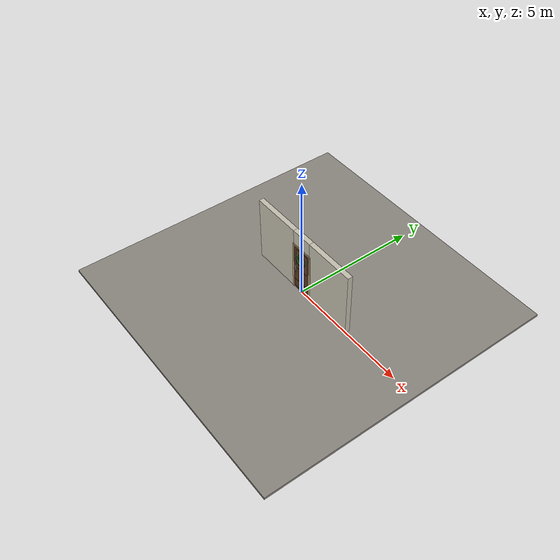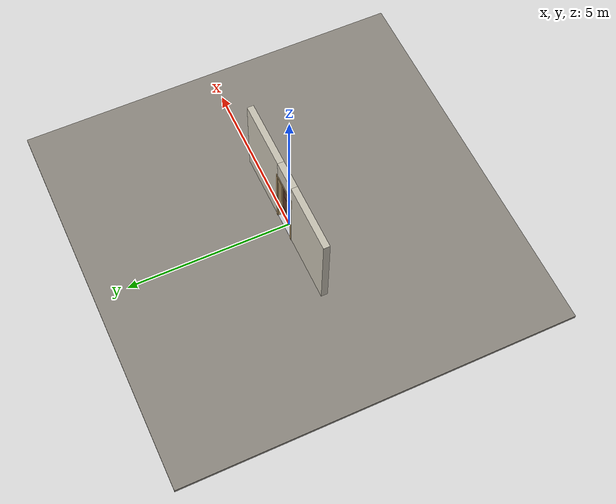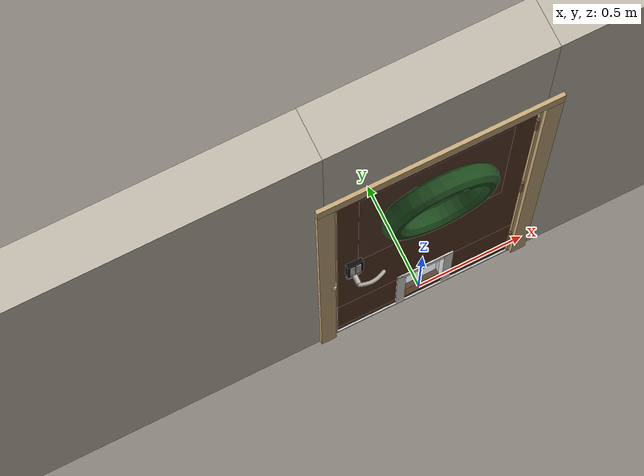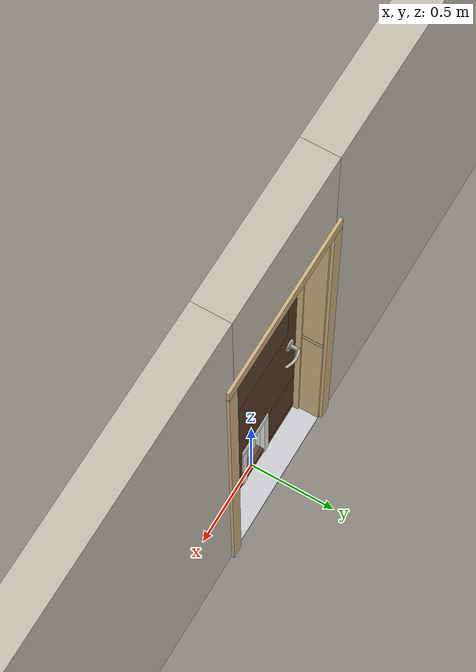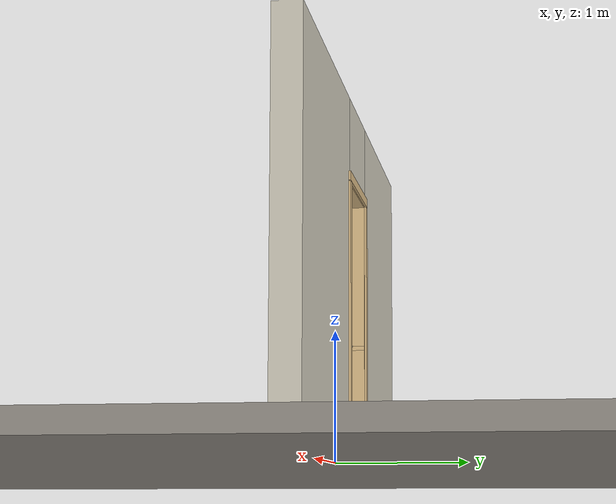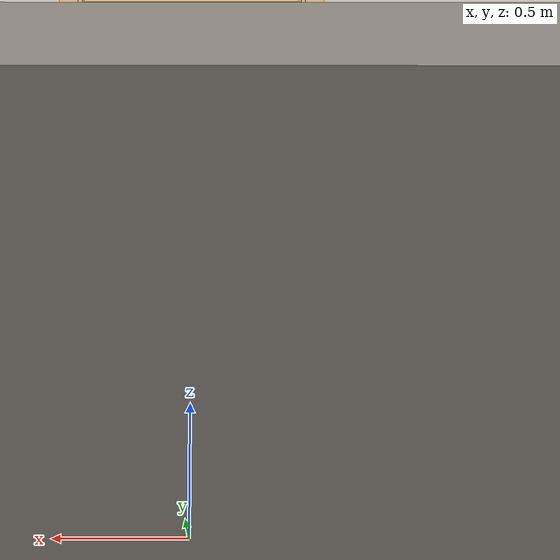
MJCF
<?xml version="1.0" ?>
<mujoco model="db0526_swing_single_full">
  <compiler angle="radian" meshdir="../../hardware" texturedir="../../textures" autolimits="true" inertiafromgeom="false"/>
  <option timestep="0.002" integrator="implicitfast" cone="elliptic" impratio="10" noslip_iterations="3">
    <flag multiccd="enable"/>
  </option>
  <size memory="16M"/>
  <default>
    <geom condim="4" solref="0.005 1" solimp="0.95 0.99 0.001"/>
    <joint solreflimit="0.005 1" solimplimit="0.95 0.99 0.001"/>
    <tendon solreflimit="0.005 1"/>
    <equality solref="0.002 1"/>
  </default>
  <visual>
    <headlight ambient="0.4 0.4 0.4" diffuse="0.7 0.7 0.7" specular="0.2 0.2 0.2"/>
    <quality shadowsize="4096"/>
    <map znear="0.01" zfar="60"/>
  </visual>
  <asset>
    <mesh name="hinge_e22b26c0c1" file="hinge_e22b26c0c1.obj"/>
    <mesh name="hinge_jamb_e1d088f8dc" file="hinge_jamb_e1d088f8dc.obj"/>
    <mesh name="house_numbers_ad0a8e8be0" file="house_numbers_ad0a8e8be0.obj"/>
    <mesh name="keypad_body_3b2d063948" file="keypad_body_3b2d063948.obj"/>
    <mesh name="knocker_a8f2ce0ad7" file="knocker_a8f2ce0ad7.obj"/>
    <mesh name="lever_a61139b160" file="lever_a61139b160.obj"/>
    <mesh name="peephole_f829311a59" file="peephole_f829311a59.obj"/>
    <mesh name="wreath_86a3f1bf8b" file="wreath_86a3f1bf8b.obj"/>
    <material name="mat_floor" rgba="0.55 0.53 0.5 1" specular="0.2" shininess="0.15" reflectance="0"/>
    <material name="mat_wall" rgba="0.78 0.76 0.7 1" specular="0.2" shininess="0.1" reflectance="0"/>
    <material name="mat_leaf" rgba="0.35 0.22 0.14 1" specular="0.2" shininess="0.44" reflectance="0"/>
    <material name="mat_glass" rgba="0.45 0.35 0.28 0.45" specular="0.2" shininess="0.95" reflectance="0.1"/>
    <material name="mat_hinge" rgba="0.45 0.3 0.22 1" specular="0.5" shininess="0.1" reflectance="0.2"/>
    <material name="mat_op_nickel_satin" rgba="0.72 0.7 0.66 1" specular="0.8" shininess="0.65" reflectance="0.4"/>
    <material name="mat_trim" rgba="0.85 0.66 0.3 1" specular="0.8" shininess="0.75" reflectance="0.4"/>
    <material name="mat_keypad" rgba="0.05 0.05 0.05 1" specular="0.38" shininess="0.3" reflectance="0.12"/>
    <material name="mat_key" rgba="0.85 0.85 0.82 1" specular="0.2" shininess="0.5" reflectance="0"/>
    <material name="mat_bolt" rgba="0.85 0.66 0.3 1" specular="0.8" shininess="0.75" reflectance="0.4"/>
    <material name="mat_frame" rgba="0.82 0.7 0.5 1" specular="0.2" shininess="0.45" reflectance="0"/>
    <material name="mat_seal" rgba="0.1 0.1 0.1 1" specular="0.2" shininess="0.1" reflectance="0"/>
    <material name="mat_threshold" rgba="0.8 0.81 0.83 1" specular="0.8" shininess="0.6" reflectance="0.4"/>
    <material name="mat_peephole" rgba="0.85 0.66 0.3 1" specular="0.8" shininess="0.75" reflectance="0.4"/>
    <material name="mat_knocker" rgba="0.55 0.42 0.22 1" specular="0.74" shininess="0.45" reflectance="0.36"/>
    <material name="mat_numbers" rgba="0.05 0.05 0.05 1" specular="0.38" shininess="0.3" reflectance="0.12"/>
    <material name="mat_wreath" rgba="0.12 0.3 0.12 1" specular="0.2" shininess="0.05" reflectance="0"/>
    <material name="mat_wreath_hook" rgba="0.85 0.66 0.3 1" specular="0.8" shininess="0.75" reflectance="0.4"/>
    <material name="mat_petframe" rgba="0.92 0.92 0.9 1" specular="0.2" shininess="0.6" reflectance="0"/>
    <material name="mat_petflap" rgba="0.9 0.92 0.95 0.3" specular="0.2" shininess="0.9" reflectance="0.1"/>
    <texture name="skybox" type="skybox" builtin="gradient" rgb1="0.6 0.7 0.85" rgb2="0.9 0.92 0.95" width="256" height="256"/>
  </asset>
  <worldbody>
    <light name="sun" pos="1.5 -2.5 4" dir="-0.3 0.5 -0.8" directional="true" diffuse="0.8 0.8 0.8" specular="0.3 0.3 0.3" castshadow="true"/>
    <light name="fill" pos="-1.5 2.5 3" dir="0.3 -0.5 -0.7" directional="true" diffuse="0.35 0.35 0.4" castshadow="false"/>
    <camera name="robot_view" pos="0 -2.471187 1.734312" xyaxes="1 0 0 0 0.26963 0.962964" fovy="52"/>
    <camera name="far_view" pos="0 2.613187 1.734312" xyaxes="-1 0 0 0 -0.26963 0.962964" fovy="52"/>
    <camera name="iso" pos="-1.932062 -2.064437 2.141063" xyaxes="0.741536 -0.670913 0 0.242917 0.268487 0.932151" fovy="46"/>
    <camera name="detail_handle" pos="-0.0659 -0.723 1.194" xyaxes="0.97561 0.219512 0 -0.070934 0.315262 0.94635" fovy="38"/>
    <geom name="floor" type="box" size="6 6 0.05" pos="0 0 -0.05" material="mat_floor" group="0" contype="1" conaffinity="1" friction="0.8 0.005 0.0001" density="2400"/>
    <geom name="wall_left" type="box" size="1.02025 0.1 1.35" pos="-1.47975 0.071 1.35" material="mat_wall" group="0" contype="1" conaffinity="1" friction="0.6 0.005 0.0001" density="800"/>
    <geom name="wall_right" type="box" size="1.03525 0.1 1.35" pos="1.46475 0.071 1.35" material="mat_wall" group="0" contype="1" conaffinity="1" friction="0.6 0.005 0.0001" density="800"/>
    <geom name="wall_header" type="box" size="0.4445 0.1 0.303" pos="-0.015 0.071 2.397" material="mat_wall" group="0" contype="1" conaffinity="1" friction="0.6 0.005 0.0001" density="800"/>
    <geom name="hinge_0_jamb" type="mesh" mesh="hinge_jamb_e1d088f8dc" pos="0.4075 -0.029 0.267" quat="0 0 1 0" material="mat_hinge" group="1" contype="0" conaffinity="0" density="7850"/>
    <geom name="hinge_1_jamb" type="mesh" mesh="hinge_jamb_e1d088f8dc" pos="0.4075 -0.029 1.029" quat="0 0 1 0" material="mat_hinge" group="1" contype="0" conaffinity="0" density="7850"/>
    <geom name="hinge_2_jamb" type="mesh" mesh="hinge_jamb_e1d088f8dc" pos="0.4075 -0.029 1.861" quat="0 0 1 0" material="mat_hinge" group="1" contype="0" conaffinity="0" density="7850"/>
    <geom name="jamb_hinge" type="box" size="0.0095 0.1 1.0225" pos="0.42 0.071 1.0225" material="mat_frame" group="0" contype="1" conaffinity="1" friction="0.6 0.005 0.0001" density="400"/>
    <geom name="strike_914_wall_n" type="box" size="0.0245 0.081575 0.0167" pos="-0.435 0.089425 0.914" material="mat_frame" group="0" contype="1" conaffinity="1" friction="0.6 0.005 0.0001" density="400"/>
    <geom name="strike_914_wall_p" type="box" size="0.0245 0.008 0.0167" pos="-0.435 -0.01585 0.914" material="mat_frame" group="0" contype="1" conaffinity="1" friction="0.6 0.005 0.0001" density="400"/>
    <geom name="strike_914_ramp" type="box" size="0.0245 0.01649 0.0167" pos="-0.439636 -0.028673 0.914" quat="0.977148 0 0 -0.212558" material="mat_frame" group="0" contype="1" conaffinity="1" friction="0.12 0.005 0.0001" density="400"/>
    <geom name="strike_914_back" type="box" size="0.01615 0.00785 0.0167" pos="-0.44335 0 0.914" material="mat_frame" group="0" contype="1" conaffinity="1" friction="0.6 0.005 0.0001" density="400"/>
    <geom name="jamb_strike_0" type="box" size="0.0245 0.1 0.44865" pos="-0.435 0.071 0.44865" material="mat_frame" group="0" contype="1" conaffinity="1" friction="0.6 0.005 0.0001" density="400"/>
    <geom name="jamb_strike_1" type="box" size="0.0245 0.1 0.55715" pos="-0.435 0.071 1.48785" material="mat_frame" group="0" contype="1" conaffinity="1" friction="0.6 0.005 0.0001" density="400"/>
    <geom name="jamb_head" type="box" size="0.4445 0.1 0.0095" pos="-0.015 0.071 2.0545" material="mat_frame" group="0" contype="1" conaffinity="1" friction="0.6 0.005 0.0001" density="400"/>
    <geom name="head_stud" type="box" size="0.4445 0.1 0.015" pos="-0.015 0.071 2.079" material="mat_wall" group="0" contype="1" conaffinity="1" friction="0.6 0.005 0.0001" density="500"/>
    <geom name="stop_hinge" type="box" size="0.0055 0.016 1.0225" pos="0.405 0.0385 1.0225" material="mat_frame" group="0" contype="1" conaffinity="1" friction="0.6 0.005 0.0001" density="400"/>
    <geom name="stop_strike" type="box" size="0.0055 0.016 1.0225" pos="-0.405 0.0385 1.0225" material="mat_frame" group="0" contype="1" conaffinity="1" friction="0.6 0.005 0.0001" density="400"/>
    <geom name="stop_head" type="box" size="0.4105 0.016 0.0055" pos="0 0.0385 2.0395" material="mat_frame" group="0" contype="1" conaffinity="1" friction="0.6 0.005 0.0001" density="400"/>
    <geom name="seal_hinge" type="box" size="0.004 0.003 1.0225" pos="0.4075 0.025 1.0225" material="mat_seal" group="1" contype="0" conaffinity="0" density="1100"/>
    <geom name="seal_strike" type="box" size="0.004 0.003 1.0225" pos="-0.4075 0.025 1.0225" material="mat_seal" group="1" contype="0" conaffinity="0" density="1100"/>
    <geom name="seal_head" type="box" size="0.3905 0.003 0.008" pos="0 0.025 2.033" material="mat_seal" group="1" contype="0" conaffinity="0" density="1100"/>
    <geom name="casing_l_n" type="box" size="0.035 0.008 1.032" pos="-0.4595 -0.037 1.0225" material="mat_frame" group="2" contype="0" conaffinity="0" density="400"/>
    <geom name="casing_r_n" type="box" size="0.035 0.008 1.032" pos="0.4595 -0.037 1.0225" material="mat_frame" group="2" contype="0" conaffinity="0" density="400"/>
    <geom name="casing_h_n" type="box" size="0.4945 0.008 0.035" pos="0 -0.037 2.094" material="mat_frame" group="2" contype="0" conaffinity="0" density="400"/>
    <geom name="casing_l_p" type="box" size="0.035 0.008 1.032" pos="-0.4595 0.179 1.0225" material="mat_frame" group="2" contype="0" conaffinity="0" density="400"/>
    <geom name="casing_r_p" type="box" size="0.035 0.008 1.032" pos="0.4595 0.179 1.0225" material="mat_frame" group="2" contype="0" conaffinity="0" density="400"/>
    <geom name="casing_h_p" type="box" size="0.4945 0.008 0.035" pos="0 0.179 2.094" material="mat_frame" group="2" contype="0" conaffinity="0" density="400"/>
    <geom name="threshold" type="box" size="0.4295 0.1 0.0065" pos="0 0.071 0.0065" material="mat_threshold" group="0" contype="1" conaffinity="1" friction="0.5 0.005 0.0001" density="2700"/>
    <site name="approach_point" pos="0 -1.5 0" quat="1 0 0 0" size="0.05" rgba="0.2 0.9 0.2 0.5" group="4"/>
    <site name="goal_point" pos="0 1.5 0" quat="1 0 0 0" size="0.05" rgba="0.2 0.9 0.2 0.5" group="4"/>
    <site name="door_plane_center" pos="0 0 1.0225" quat="1 0 0 0" size="0.02" rgba="0.2 0.9 0.2 0.5" group="4"/>
    <body name="leaf" pos="0.4105 0 0">
      <inertial pos="-0.402538 -0.006466 0.991218" mass="28.870456" quat="0.497347 0.501694 0.502793 -0.498145" diaginertia="1.528567353 10.402262715 11.900490152"/>
      <joint name="leaf_hinge" type="hinge" axis="0 0 1" pos="-0.003 -0.029 0" limited="true" range="0 1.745329" solreflimit="0.02 1" damping="2.160326" frictionloss="2.85869" stiffness="6.6" springref="-0.563075" armature="0.02"/>
      <geom name="leaf_slab_below" type="box" size="0.4065 0.022 0.0245" pos="-0.4095 0 0.0415" material="mat_leaf" group="0" contype="1" conaffinity="1" friction="0.4 0.005 0.0001" density="1"/>
      <geom name="leaf_slab_above" type="box" size="0.4065 0.022 0.8065" pos="-0.4095 0 1.2345" material="mat_leaf" group="0" contype="1" conaffinity="1" friction="0.4 0.005 0.0001" density="1"/>
      <geom name="leaf_slab_left" type="box" size="0.15775 0.022 0.181" pos="-0.65825 0 0.247" material="mat_leaf" group="0" contype="1" conaffinity="1" friction="0.4 0.005 0.0001" density="1"/>
      <geom name="leaf_slab_right" type="box" size="0.15775 0.022 0.181" pos="-0.16075 0 0.247" material="mat_leaf" group="0" contype="1" conaffinity="1" friction="0.4 0.005 0.0001" density="1"/>
      <geom name="leaf_glass_0" type="box" size="0.3165 0.0228 0.43516" pos="-0.4095 0 1.50464" material="mat_glass" group="1" contype="0" conaffinity="0" density="1"/>
      <geom name="hinge_0" type="mesh" mesh="hinge_e22b26c0c1" pos="-0.003 -0.029 0.267" quat="0 0 1 0" material="mat_hinge" group="1" contype="0" conaffinity="0" density="7850"/>
      <geom name="hinge_1" type="mesh" mesh="hinge_e22b26c0c1" pos="-0.003 -0.029 1.029" quat="0 0 1 0" material="mat_hinge" group="1" contype="0" conaffinity="0" density="7850"/>
      <geom name="hinge_2" type="mesh" mesh="hinge_e22b26c0c1" pos="-0.003 -0.029 1.861" quat="0 0 1 0" material="mat_hinge" group="1" contype="0" conaffinity="0" density="7850"/>
      <geom name="leaf_keypad_body" type="mesh" mesh="keypad_body_3b2d063948" pos="-0.746 -0.022 1.034" quat="0.707107 0.707107 0 0" material="mat_keypad" group="0" contype="1" conaffinity="1" friction="0.6 0.005 0.0001" density="2000"/>
      <geom name="leaf_latch_bolt_faceplate" type="box" size="0.0006 0.01235 0.0267" pos="-0.8154 0 0.914" material="mat_bolt" group="1" contype="0" conaffinity="0" density="8500"/>
      <geom name="peephole" type="mesh" mesh="peephole_f829311a59" pos="-0.4095 -0.022 1.517" quat="0 0 -0.707107 0.707107" material="mat_peephole" group="2" contype="0" conaffinity="0" density="8500"/>
      <geom name="house_numbers" type="mesh" mesh="house_numbers_ad0a8e8be0" pos="-0.4095 -0.022 1.691" quat="0 0 -0.707107 0.707107" material="mat_numbers" group="2" contype="0" conaffinity="0" density="1000"/>
      <geom name="wreath" type="mesh" mesh="wreath_86a3f1bf8b" pos="-0.4095 -0.022 1.59572" quat="0 0 -0.707107 0.707107" material="mat_wreath" group="2" contype="0" conaffinity="0" density="200"/>
      <geom name="wreath_hook" type="cylinder" size="0.004 0.008" pos="-0.4095 -0.029 1.78372" quat="0.707107 -0.707107 0 0" material="mat_wreath_hook" group="2" contype="0" conaffinity="0" density="8500"/>
      <geom name="pet_frame_top" type="box" size="0.13 0.028 0.02" pos="-0.4095 0 0.447" material="mat_petframe" group="2" contype="0" conaffinity="0" density="1200"/>
      <geom name="pet_frame_l" type="box" size="0.02 0.028 0.22" pos="-0.5195 0 0.247" material="mat_petframe" group="2" contype="0" conaffinity="0" density="1200"/>
      <geom name="pet_frame_r" type="box" size="0.02 0.028 0.22" pos="-0.2995 0 0.247" material="mat_petframe" group="2" contype="0" conaffinity="0" density="1200"/>
      <site name="leaf_edge_mid" pos="-0.816 0 1.012" quat="1 0 0 0" size="0.02" rgba="0.2 0.9 0.2 0.5" group="4"/>
      <body name="leaf_handle" pos="-0.746 0 0.914">
        <inertial pos="0.022132 0.050687 0" mass="0.463269" quat="-0.312008 0 0 0.950079" diaginertia="0.000227859 0.000847742 0.000992066"/>
        <joint name="leaf_handle_hinge" type="hinge" axis="0 1 0" limited="true" range="0 0.87" damping="0.208392" frictionloss="0.052" stiffness="1" springref="-0.35" armature="0.01"/>
        <geom name="leaf_handle_spindle" type="cylinder" size="0.006 0.03" pos="0 0 0" quat="0.707107 -0.707107 0 0" material="mat_op_nickel_satin" group="1" contype="0" conaffinity="0" density="7850"/>
        <geom name="leaf_handle_lever_p" type="mesh" mesh="lever_a61139b160" pos="0 0.022 0" quat="0 0 0.707107 0.707107" material="mat_op_nickel_satin" group="1" contype="0" conaffinity="0" density="3000"/>
        <geom name="leaf_handle_lever_col_p" type="capsule" size="0.008 0.048" pos="0.056 0.077 0" quat="0.707107 0 0.707107 0" material="mat_op_nickel_satin" group="3" contype="1" conaffinity="1" rgba="0.8 0.3 0.3 0.25" friction="0.7 0.01 0.0001" density="3000"/>
        <geom name="leaf_handle_hub_col_p" type="cylinder" size="0.012 0.022" pos="0 0.052 0" quat="0.707107 -0.707107 0 0" material="mat_op_nickel_satin" group="3" contype="1" conaffinity="1" rgba="0.8 0.3 0.3 0.25" friction="0.6 0.005 0.0001" density="3000"/>
        <site name="leaf_handle_grip_p" pos="0.0896 0.077 0" quat="1 0 0 0" size="0.012" rgba="0.2 0.9 0.2 0.5" group="4"/>
      </body>
      <body name="leaf_keypad_key_1" pos="-0.759 -0.042 1.082">
        <inertial pos="0 -0.0015 0" mass="0.001008" quat="0 0 0.707107 0.707107" diaginertia="0.000000017 0.000000034 0.00000005"/>
        <joint name="leaf_keypad_key_1_slide" type="slide" axis="0 1 0" limited="true" range="0 0.0015" damping="14" frictionloss="0.05" stiffness="1000" springref="-0.0015" armature="0.1"/>
        <geom name="leaf_keypad_key_1_geom" type="box" size="0.01 0.0015 0.007" pos="0 -0.0015 0" material="mat_key" group="0" contype="1" conaffinity="1" friction="0.6 0.005 0.0001" density="1200"/>
        <site name="leaf_keypad_key_1_press" pos="0 -0.005 0" quat="1 0 0 0" size="0.008" rgba="0.2 0.9 0.2 0.5" group="4"/>
      </body>
      <body name="leaf_keypad_key_2" pos="-0.733 -0.042 1.082">
        <inertial pos="0 -0.0015 0" mass="0.001008" quat="0 0 0.707107 0.707107" diaginertia="0.000000017 0.000000034 0.00000005"/>
        <joint name="leaf_keypad_key_2_slide" type="slide" axis="0 1 0" limited="true" range="0 0.0015" damping="14" frictionloss="0.05" stiffness="1000" springref="-0.0015" armature="0.1"/>
        <geom name="leaf_keypad_key_2_geom" type="box" size="0.01 0.0015 0.007" pos="0 -0.0015 0" material="mat_key" group="0" contype="1" conaffinity="1" friction="0.6 0.005 0.0001" density="1200"/>
        <site name="leaf_keypad_key_2_press" pos="0 -0.005 0" quat="1 0 0 0" size="0.008" rgba="0.2 0.9 0.2 0.5" group="4"/>
      </body>
      <body name="leaf_keypad_key_3" pos="-0.759 -0.042 1.058">
        <inertial pos="0 -0.0015 0" mass="0.001008" quat="0 0 0.707107 0.707107" diaginertia="0.000000017 0.000000034 0.00000005"/>
        <joint name="leaf_keypad_key_3_slide" type="slide" axis="0 1 0" limited="true" range="0 0.0015" damping="14" frictionloss="0.05" stiffness="1000" springref="-0.0015" armature="0.1"/>
        <geom name="leaf_keypad_key_3_geom" type="box" size="0.01 0.0015 0.007" pos="0 -0.0015 0" material="mat_key" group="0" contype="1" conaffinity="1" friction="0.6 0.005 0.0001" density="1200"/>
        <site name="leaf_keypad_key_3_press" pos="0 -0.005 0" quat="1 0 0 0" size="0.008" rgba="0.2 0.9 0.2 0.5" group="4"/>
      </body>
      <body name="leaf_keypad_key_4" pos="-0.733 -0.042 1.058">
        <inertial pos="0 -0.0015 0" mass="0.001008" quat="0 0 0.707107 0.707107" diaginertia="0.000000017 0.000000034 0.00000005"/>
        <joint name="leaf_keypad_key_4_slide" type="slide" axis="0 1 0" limited="true" range="0 0.0015" damping="14" frictionloss="0.05" stiffness="1000" springref="-0.0015" armature="0.1"/>
        <geom name="leaf_keypad_key_4_geom" type="box" size="0.01 0.0015 0.007" pos="0 -0.0015 0" material="mat_key" group="0" contype="1" conaffinity="1" friction="0.6 0.005 0.0001" density="1200"/>
        <site name="leaf_keypad_key_4_press" pos="0 -0.005 0" quat="1 0 0 0" size="0.008" rgba="0.2 0.9 0.2 0.5" group="4"/>
      </body>
      <body name="leaf_keypad_key_5" pos="-0.759 -0.042 1.034">
        <inertial pos="0 -0.0015 0" mass="0.001008" quat="0 0 0.707107 0.707107" diaginertia="0.000000017 0.000000034 0.00000005"/>
        <joint name="leaf_keypad_key_5_slide" type="slide" axis="0 1 0" limited="true" range="0 0.0015" damping="14" frictionloss="0.05" stiffness="1000" springref="-0.0015" armature="0.1"/>
        <geom name="leaf_keypad_key_5_geom" type="box" size="0.01 0.0015 0.007" pos="0 -0.0015 0" material="mat_key" group="0" contype="1" conaffinity="1" friction="0.6 0.005 0.0001" density="1200"/>
        <site name="leaf_keypad_key_5_press" pos="0 -0.005 0" quat="1 0 0 0" size="0.008" rgba="0.2 0.9 0.2 0.5" group="4"/>
      </body>
      <body name="leaf_keypad_key_6" pos="-0.733 -0.042 1.034">
        <inertial pos="0 -0.0015 0" mass="0.001008" quat="0 0 0.707107 0.707107" diaginertia="0.000000017 0.000000034 0.00000005"/>
        <joint name="leaf_keypad_key_6_slide" type="slide" axis="0 1 0" limited="true" range="0 0.0015" damping="14" frictionloss="0.05" stiffness="1000" springref="-0.0015" armature="0.1"/>
        <geom name="leaf_keypad_key_6_geom" type="box" size="0.01 0.0015 0.007" pos="0 -0.0015 0" material="mat_key" group="0" contype="1" conaffinity="1" friction="0.6 0.005 0.0001" density="1200"/>
        <site name="leaf_keypad_key_6_press" pos="0 -0.005 0" quat="1 0 0 0" size="0.008" rgba="0.2 0.9 0.2 0.5" group="4"/>
      </body>
      <body name="leaf_keypad_key_7" pos="-0.759 -0.042 1.01">
        <inertial pos="0 -0.0015 0" mass="0.001008" quat="0 0 0.707107 0.707107" diaginertia="0.000000017 0.000000034 0.00000005"/>
        <joint name="leaf_keypad_key_7_slide" type="slide" axis="0 1 0" limited="true" range="0 0.0015" damping="14" frictionloss="0.05" stiffness="1000" springref="-0.0015" armature="0.1"/>
        <geom name="leaf_keypad_key_7_geom" type="box" size="0.01 0.0015 0.007" pos="0 -0.0015 0" material="mat_key" group="0" contype="1" conaffinity="1" friction="0.6 0.005 0.0001" density="1200"/>
        <site name="leaf_keypad_key_7_press" pos="0 -0.005 0" quat="1 0 0 0" size="0.008" rgba="0.2 0.9 0.2 0.5" group="4"/>
      </body>
      <body name="leaf_keypad_key_8" pos="-0.733 -0.042 1.01">
        <inertial pos="0 -0.0015 0" mass="0.001008" quat="0 0 0.707107 0.707107" diaginertia="0.000000017 0.000000034 0.00000005"/>
        <joint name="leaf_keypad_key_8_slide" type="slide" axis="0 1 0" limited="true" range="0 0.0015" damping="14" frictionloss="0.05" stiffness="1000" springref="-0.0015" armature="0.1"/>
        <geom name="leaf_keypad_key_8_geom" type="box" size="0.01 0.0015 0.007" pos="0 -0.0015 0" material="mat_key" group="0" contype="1" conaffinity="1" friction="0.6 0.005 0.0001" density="1200"/>
        <site name="leaf_keypad_key_8_press" pos="0 -0.005 0" quat="1 0 0 0" size="0.008" rgba="0.2 0.9 0.2 0.5" group="4"/>
      </body>
      <body name="leaf_keypad_key_9" pos="-0.759 -0.042 0.986">
        <inertial pos="0 -0.0015 0" mass="0.001008" quat="0 0 0.707107 0.707107" diaginertia="0.000000017 0.000000034 0.00000005"/>
        <joint name="leaf_keypad_key_9_slide" type="slide" axis="0 1 0" limited="true" range="0 0.0015" damping="14" frictionloss="0.05" stiffness="1000" springref="-0.0015" armature="0.1"/>
        <geom name="leaf_keypad_key_9_geom" type="box" size="0.01 0.0015 0.007" pos="0 -0.0015 0" material="mat_key" group="0" contype="1" conaffinity="1" friction="0.6 0.005 0.0001" density="1200"/>
        <site name="leaf_keypad_key_9_press" pos="0 -0.005 0" quat="1 0 0 0" size="0.008" rgba="0.2 0.9 0.2 0.5" group="4"/>
      </body>
      <body name="leaf_keypad_key_0" pos="-0.733 -0.042 0.986">
        <inertial pos="0 -0.0015 0" mass="0.001008" quat="0 0 0.707107 0.707107" diaginertia="0.000000017 0.000000034 0.00000005"/>
        <joint name="leaf_keypad_key_0_slide" type="slide" axis="0 1 0" limited="true" range="0 0.0015" damping="14" frictionloss="0.05" stiffness="1000" springref="-0.0015" armature="0.1"/>
        <geom name="leaf_keypad_key_0_geom" type="box" size="0.01 0.0015 0.007" pos="0 -0.0015 0" material="mat_key" group="0" contype="1" conaffinity="1" friction="0.6 0.005 0.0001" density="1200"/>
        <site name="leaf_keypad_key_0_press" pos="0 -0.005 0" quat="1 0 0 0" size="0.008" rgba="0.2 0.9 0.2 0.5" group="4"/>
      </body>
      <body name="leaf_handle_out" pos="-0.746 0 0.914">
        <inertial pos="0.025007 -0.057273 0" mass="0.41" quat="0.235955 0 0 0.971764" diaginertia="0.000156759 0.000717302 0.000791484"/>
        <joint name="leaf_handle_out_hinge" type="hinge" axis="0 1 0" limited="true" range="0 0.06" damping="0.208382" frictionloss="0.052" stiffness="1" springref="-0.35" armature="0.01"/>
        <geom name="leaf_handle_out_lever_n" type="mesh" mesh="lever_a61139b160" pos="0 -0.022 0" quat="0 0 -0.707107 0.707107" material="mat_op_nickel_satin" group="1" contype="0" conaffinity="0" density="3000"/>
        <geom name="leaf_handle_out_lever_col_n" type="capsule" size="0.008 0.048" pos="0.056 -0.077 0" quat="0.707107 0 0.707107 0" material="mat_op_nickel_satin" group="3" contype="1" conaffinity="1" rgba="0.8 0.3 0.3 0.25" friction="0.7 0.01 0.0001" density="3000"/>
        <geom name="leaf_handle_out_hub_col_n" type="cylinder" size="0.012 0.022" pos="0 -0.052 0" quat="0.707107 -0.707107 0 0" material="mat_op_nickel_satin" group="3" contype="1" conaffinity="1" rgba="0.8 0.3 0.3 0.25" friction="0.6 0.005 0.0001" density="3000"/>
        <site name="leaf_handle_out_grip_n" pos="0.0896 -0.077 0" quat="1 0 0 0" size="0.012" rgba="0.2 0.9 0.2 0.5" group="4"/>
      </body>
      <body name="leaf_latch_bolt" pos="-0.816 0 0.914">
        <inertial pos="0.00865 0 0" mass="0.041419" quat="0.92388 0.382683 0 0" diaginertia="0.000000798 0.000005598 0.000005598"/>
        <joint name="leaf_latch_bolt_slide" type="slide" axis="1 0 0" limited="true" range="0 0.0127" damping="2" frictionloss="0.3" stiffness="300" springref="-0.008333" armature="0.1"/>
        <geom name="leaf_latch_bolt_capsule" type="capsule" size="0.00635 0.015" pos="0.00865 0 0" quat="0.707107 0 -0.707107 0" material="mat_bolt" group="0" contype="1" conaffinity="1" friction="0.2 0.005 0.0001" density="8500"/>
      </body>
      <body name="knocker" pos="-0.4095 -0.022 1.297">
        <inertial pos="0 -0.010216 0.001203" mass="0.814961" quat="0.49606 0.50391 0.50391 -0.49606" diaginertia="0.000611431 0.001116108 0.001534609"/>
        <joint name="knocker_hinge" type="hinge" axis="-1 0 0" pos="0 0 0.055" limited="true" range="0 0.6" damping="0.005" armature="0.002"/>
        <geom name="knocker_mesh" type="mesh" mesh="knocker_a8f2ce0ad7" pos="0 0 0" quat="0 0 -0.707107 0.707107" material="mat_knocker" group="2" contype="0" conaffinity="0" density="8500"/>
        <geom name="knocker_col" type="capsule" size="0.007 0.03" pos="0 -0.025 -0.01" quat="0.707107 0 0.707107 0" material="mat_knocker" group="3" contype="1" conaffinity="1" rgba="0.8 0.3 0.3 0.25" friction="0.6 0.005 0.0001" density="8500"/>
      </body>
      <body name="pet_flap" pos="-0.4095 0 0.427">
        <inertial pos="0 0 -0.18" mass="0.083216" quat="-0.5 0.5 0.5 0.5" diaginertia="0.000205328 0.000859403 0.001064383"/>
        <joint name="pet_flap_hinge" type="hinge" axis="-1 0 0" limited="true" range="-1.45 1.45" damping="0.02" frictionloss="0.02" armature="0.005"/>
        <geom name="pet_flap_geom" type="box" size="0.086 0.0025 0.176" pos="0 0 -0.18" material="mat_petflap" group="0" contype="1" conaffinity="1" friction="0.6 0.005 0.0001" density="1180"/>
      </body>
    </body>
  </worldbody>
  <tendon>
    <fixed name="leaf_latch_bolt_coupling" limited="true" range="0 10">
      <joint joint="leaf_latch_bolt_slide" coef="1"/>
      <joint joint="leaf_handle_hinge" coef="-0.015679"/>
      <joint joint="leaf_handle_out_hinge" coef="-0.015679"/>
    </fixed>
  </tendon>
  <sensor>
    <jointpos name="leaf_hinge_pos" joint="leaf_hinge"/>
    <jointvel name="leaf_hinge_vel" joint="leaf_hinge"/>
    <jointpos name="leaf_handle_hinge_pos" joint="leaf_handle_hinge"/>
    <jointvel name="leaf_handle_hinge_vel" joint="leaf_handle_hinge"/>
    <jointpos name="leaf_keypad_key_1_slide_pos" joint="leaf_keypad_key_1_slide"/>
    <jointvel name="leaf_keypad_key_1_slide_vel" joint="leaf_keypad_key_1_slide"/>
    <jointpos name="leaf_keypad_key_2_slide_pos" joint="leaf_keypad_key_2_slide"/>
    <jointvel name="leaf_keypad_key_2_slide_vel" joint="leaf_keypad_key_2_slide"/>
    <jointpos name="leaf_keypad_key_3_slide_pos" joint="leaf_keypad_key_3_slide"/>
    <jointvel name="leaf_keypad_key_3_slide_vel" joint="leaf_keypad_key_3_slide"/>
    <jointpos name="leaf_keypad_key_4_slide_pos" joint="leaf_keypad_key_4_slide"/>
    <jointvel name="leaf_keypad_key_4_slide_vel" joint="leaf_keypad_key_4_slide"/>
    <jointpos name="leaf_keypad_key_5_slide_pos" joint="leaf_keypad_key_5_slide"/>
    <jointvel name="leaf_keypad_key_5_slide_vel" joint="leaf_keypad_key_5_slide"/>
    <jointpos name="leaf_keypad_key_6_slide_pos" joint="leaf_keypad_key_6_slide"/>
    <jointvel name="leaf_keypad_key_6_slide_vel" joint="leaf_keypad_key_6_slide"/>
    <jointpos name="leaf_keypad_key_7_slide_pos" joint="leaf_keypad_key_7_slide"/>
    <jointvel name="leaf_keypad_key_7_slide_vel" joint="leaf_keypad_key_7_slide"/>
    <jointpos name="leaf_keypad_key_8_slide_pos" joint="leaf_keypad_key_8_slide"/>
    <jointvel name="leaf_keypad_key_8_slide_vel" joint="leaf_keypad_key_8_slide"/>
    <jointpos name="leaf_keypad_key_9_slide_pos" joint="leaf_keypad_key_9_slide"/>
    <jointvel name="leaf_keypad_key_9_slide_vel" joint="leaf_keypad_key_9_slide"/>
    <jointpos name="leaf_keypad_key_0_slide_pos" joint="leaf_keypad_key_0_slide"/>
    <jointvel name="leaf_keypad_key_0_slide_vel" joint="leaf_keypad_key_0_slide"/>
    <jointpos name="leaf_handle_out_hinge_pos" joint="leaf_handle_out_hinge"/>
    <jointvel name="leaf_handle_out_hinge_vel" joint="leaf_handle_out_hinge"/>
    <jointpos name="leaf_latch_bolt_slide_pos" joint="leaf_latch_bolt_slide"/>
    <jointvel name="leaf_latch_bolt_slide_vel" joint="leaf_latch_bolt_slide"/>
    <jointpos name="pet_flap_hinge_pos" joint="pet_flap_hinge"/>
    <jointvel name="pet_flap_hinge_vel" joint="pet_flap_hinge"/>
  </sensor>
</mujoco>
